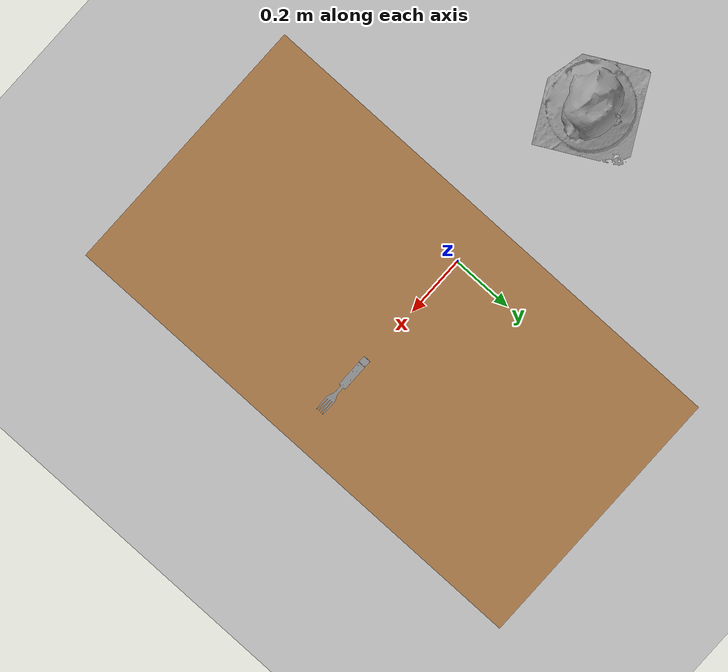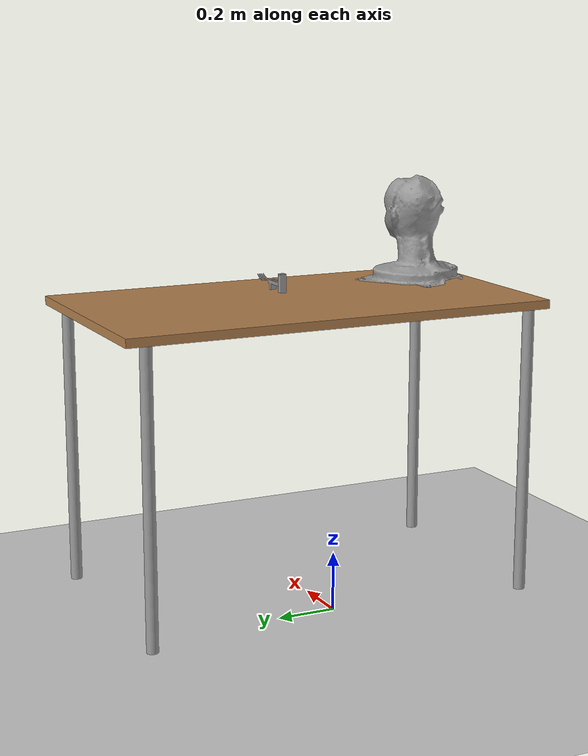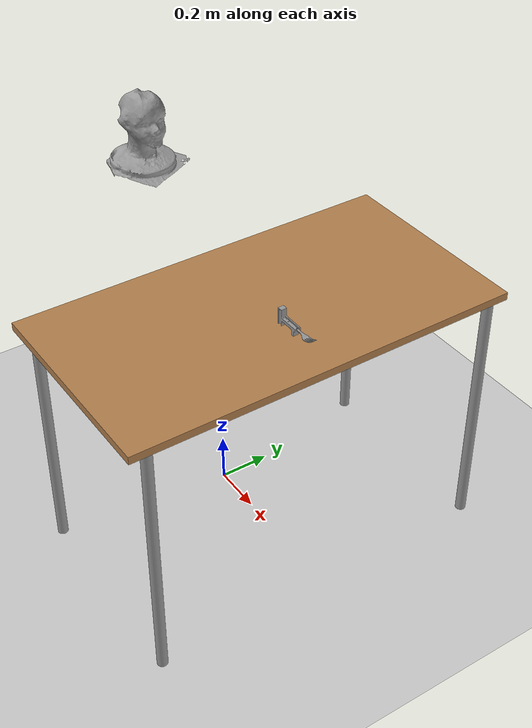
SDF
<sdf version="1.7">
 <world name="CRANE-X7 with Table">
  <scene><shadows>0</shadows><ambient>0.4 0.4 0.4 1</ambient><background>0.7 0.7 0.7 1</background></scene>
  <light name="sun" type="directional">
   <pose>0 0 10 0 -0 0</pose>
   <diffuse>0.8 0.8 0.8 1</diffuse>
   <specular>0.2 0.2 0.2 1</specular>
   <attenuation>
    <range>1000</range>
    <constant>0.9</constant>
    <linear>0.01</linear>
    <quadratic>0.001</quadratic>
   </attenuation>
   <direction>-0.5 0.1 -0.9</direction>
   <spot><inner_angle>0</inner_angle><outer_angle>0</outer_angle><falloff>0</falloff></spot>
  </light>
  <model name="table">
   <frame name="table::__model__" attached_to="table::link">
    <pose relative_to="__model__">0 0 0 0 -0 0</pose>
   </frame>
   <static>1</static>
   <link name="table::link">
    <collision name="surface">
     <pose>0 0 1 0 -0 0</pose>
     <geometry><box><size>1.5 0.8 0.03</size></box></geometry>
     <surface><friction><ode><mu>0.6</mu><mu2>0.6</mu2></ode></friction></surface>
    </collision>
    <visual name="visual1">
     <pose>0 0 1 0 -0 0</pose>
     <geometry><box><size>1.5 0.8 0.03</size></box></geometry>
     <material>
      <script><uri>file://media/materials/scripts/gazebo.material</uri><name>Gazebo/Wood</name></script>
     </material>
    </visual>
    <collision name="front_left_leg">
     <pose>0.68 0.38 0.5 0 -0 0</pose>
     <geometry><cylinder><radius>0.02</radius><length>1</length></cylinder></geometry>
    </collision>
    <visual name="front_left_leg">
     <pose>0.68 0.38 0.5 0 -0 0</pose>
     <geometry><cylinder><radius>0.02</radius><length>1</length></cylinder></geometry>
     <material>
      <script><uri>file://media/materials/scripts/gazebo.material</uri><name>Gazebo/Grey</name></script>
     </material>
    </visual>
    <collision name="front_right_leg">
     <pose>0.68 -0.38 0.5 0 -0 0</pose>
     <geometry><cylinder><radius>0.02</radius><length>1</length></cylinder></geometry>
    </collision>
    <visual name="front_right_leg">
     <pose>0.68 -0.38 0.5 0 -0 0</pose>
     <geometry><cylinder><radius>0.02</radius><length>1</length></cylinder></geometry>
     <material>
      <script><uri>file://media/materials/scripts/gazebo.material</uri><name>Gazebo/Grey</name></script>
     </material>
    </visual>
    <collision name="back_right_leg">
     <pose>-0.68 -0.38 0.5 0 -0 0</pose>
     <geometry><cylinder><radius>0.02</radius><length>1</length></cylinder></geometry>
    </collision>
    <visual name="back_right_leg">
     <pose>-0.68 -0.38 0.5 0 -0 0</pose>
     <geometry><cylinder><radius>0.02</radius><length>1</length></cylinder></geometry>
     <material>
      <script><uri>file://media/materials/scripts/gazebo.material</uri><name>Gazebo/Grey</name></script>
     </material>
    </visual>
    <collision name="back_left_leg">
     <pose>-0.68 0.38 0.5 0 -0 0</pose>
     <geometry><cylinder><radius>0.02</radius><length>1</length></cylinder></geometry>
    </collision>
    <visual name="back_left_leg">
     <pose>-0.68 0.38 0.5 0 -0 0</pose>
     <geometry><cylinder><radius>0.02</radius><length>1</length></cylinder></geometry>
     <material>
      <script><uri>file://media/materials/scripts/gazebo.material</uri><name>Gazebo/Grey</name></script>
     </material>
    </visual>
    <pose relative_to="table::__model__">0 0 0 0 -0 0</pose>
   </link>
   <pose>0.29 0 0 0 -0 1.5708</pose>
  </model>
  <model name="ground_plane">
   <frame name="ground_plane::__model__" attached_to="ground_plane::link">
    <pose relative_to="__model__">0 0 0 0 -0 0</pose>
   </frame>
   <static>1</static>
   <link name="ground_plane::link">
    <collision name="collision">
     <geometry><plane><normal>0 0 1</normal><size>100 100</size></plane></geometry>
     <surface><friction><ode><mu>100</mu><mu2>50</mu2></ode></friction></surface>
    </collision>
    <visual name="visual">
     <cast_shadows>0</cast_shadows>
     <geometry><plane><normal>0 0 1</normal><size>100 100</size></plane></geometry>
     <material>
      <script><uri>file://media/materials/scripts/gazebo.material</uri><name>Gazebo/Grey</name></script>
     </material>
    </visual>
    <pose relative_to="ground_plane::__model__">0 0 0 0 -0 0</pose>
   </link>
   <joint name="ground_joint" type="fixed"><parent>ground_plane::link</parent><child>table::link</child></joint>
  </model>
  <gravity>0 0 -9.8</gravity>
  <magnetic_field>6e-06 2.3e-05 -4.2e-05</magnetic_field>
  <atmosphere type="adiabatic"/>
  <physics type="ode">
   <max_step_size>0.001</max_step_size>
   <real_time_factor>1</real_time_factor>
   <real_time_update_rate>1000</real_time_update_rate>
  </physics>
  <spherical_coordinates>
   <surface_model>EARTH_WGS84</surface_model>
   <latitude_deg>0</latitude_deg>
   <longitude_deg>0</longitude_deg>
   <elevation>0</elevation>
   <heading_deg>0</heading_deg>
  </spherical_coordinates>
  <model name="fork">
   <link name="link_0">
    <inertial>
     <mass>0.046813</mass>
     <inertia>
      <ixx>1.251e-05</ixx>
      <ixy>0</ixy>
      <ixz>1.626e-05</ixz>
      <iyy>0.00015998</iyy>
      <iyz>0</iyz>
      <izz>0.00015083</izz>
     </inertia>
     <pose>0.07 0 0 0 -0 0</pose>
    </inertial>
    <pose>0 0 0.0325 0 -0 0</pose>
    <visual name="visual">
     <geometry>
      <mesh><uri>/home/shiokaze/catkin_ws/src/honey/models/meshes/fork.stl</uri><scale>1 1 1</scale></mesh>
     </geometry>
     <material>
      <lighting>1</lighting>
      <script><uri>file://media/materials/scripts/gazebo.material</uri><name>Gazebo/Grey</name></script>
      <shader type="pixel"><normal_map>__default__</normal_map></shader>
      <ambient>0.3 0.3 0.3 1</ambient>
      <diffuse>0.7 0.7 0.7 1</diffuse>
      <specular>0.01 0.01 0.01 1</specular>
      <emissive>0 0 0 1</emissive>
     </material>
    </visual>
    <collision name="collision">
     <geometry>
      <mesh><uri>/home/shiokaze/catkin_ws/src/honey/models/meshes/fork.stl</uri><scale>1 1 1</scale></mesh>
     </geometry>
     <surface>
      <friction>
       <ode><mu>1</mu><mu2>1</mu2><fdir1>0 0 0</fdir1><slip1>0</slip1><slip2>0</slip2></ode>
       <torsional>
        <coefficient>1</coefficient>
        <patch_radius>0</patch_radius>
        <surface_radius>0</surface_radius>
        <use_patch_radius>1</use_patch_radius>
        <ode><slip>0</slip></ode>
       </torsional>
      </friction>
      <bounce><restitution_coefficient>0</restitution_coefficient><threshold>1e+06</threshold></bounce>
      <contact>
       <collide_without_contact>0</collide_without_contact>
       <collide_without_contact_bitmask>1</collide_without_contact_bitmask>
       <collide_bitmask>1</collide_bitmask>
       <ode>
        <soft_cfm>0</soft_cfm>
        <soft_erp>0.2</soft_erp>
        <kp>1e+13</kp>
        <kd>1</kd>
        <max_vel>0.01</max_vel>
        <min_depth>0</min_depth>
       </ode>
       <bullet>
        <split_impulse>1</split_impulse>
        <split_impulse_penetration_threshold>-0.01</split_impulse_penetration_threshold>
        <soft_cfm>0</soft_cfm>
        <soft_erp>0.2</soft_erp>
        <kp>1e+13</kp>
        <kd>1</kd>
       </bullet>
      </contact>
     </surface>
    </collision>
   </link>
   <static>0</static>
   <pose>0.399969 -7.3e-05 1.015 3e-06 1.2e-05 0.001</pose>
  </model>
  <model name="face">
   <link name="link_0">
    <inertial>
     <mass>1</mass>
     <inertia>
      <ixx>0.166667</ixx>
      <ixy>0</ixy>
      <ixz>0</ixz>
      <iyy>0.166667</iyy>
      <iyz>0</iyz>
      <izz>0.166667</izz>
     </inertia>
    </inertial>
    <visual name="visual">
     <geometry>
      <mesh><uri>/home/shiokaze/catkin_ws/src/honey/models/meshes/face.stl</uri><scale>1 1 1</scale></mesh>
     </geometry>
     <material>
      <lighting>1</lighting>
      <script><uri>file://media/materials/scripts/gazebo.material</uri><name>Gazebo/Grey</name></script>
      <shader type="pixel"><normal_map>__default__</normal_map></shader>
      <ambient>0.3 0.3 0.3 1</ambient>
      <diffuse>0.7 0.7 0.7 1</diffuse>
      <specular>0.01 0.01 0.01 1</specular>
      <emissive>0 0 0 1</emissive>
     </material>
    </visual>
    <collision name="collision">
     <geometry>
      <mesh><uri>/home/shiokaze/catkin_ws/src/honey/models/meshes/face.stl</uri><scale>1 1 1</scale></mesh>
     </geometry>
     <surface>
      <friction>
       <ode><mu>1</mu><mu2>1</mu2><fdir1>0 0 0</fdir1><slip1>0</slip1><slip2>0</slip2></ode>
       <torsional>
        <coefficient>1</coefficient>
        <patch_radius>0</patch_radius>
        <surface_radius>0</surface_radius>
        <use_patch_radius>1</use_patch_radius>
        <ode><slip>0</slip></ode>
       </torsional>
      </friction>
      <bounce><restitution_coefficient>0</restitution_coefficient><threshold>1e+06</threshold></bounce>
      <contact>
       <collide_without_contact>0</collide_without_contact>
       <collide_without_contact_bitmask>1</collide_without_contact_bitmask>
       <collide_bitmask>1</collide_bitmask>
       <ode>
        <soft_cfm>0</soft_cfm>
        <soft_erp>0.2</soft_erp>
        <kp>1e+13</kp>
        <kd>1</kd>
        <max_vel>0.01</max_vel>
        <min_depth>0</min_depth>
       </ode>
       <bullet>
        <split_impulse>1</split_impulse>
        <split_impulse_penetration_threshold>-0.01</split_impulse_penetration_threshold>
        <soft_cfm>0</soft_cfm>
        <soft_erp>0.2</soft_erp>
        <kp>1e+13</kp>
        <kd>1</kd>
       </bullet>
      </contact>
     </surface>
    </collision>
   </link>
   <static>1</static>
   <pose>-0.5 0 1.2 0 -0 0</pose>
  </model>
 </world>
</sdf>
